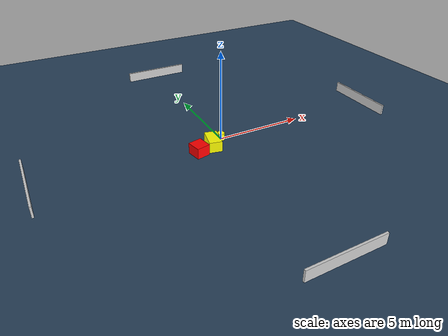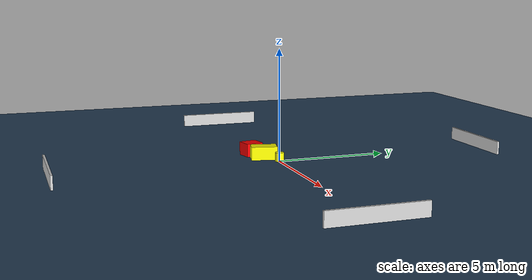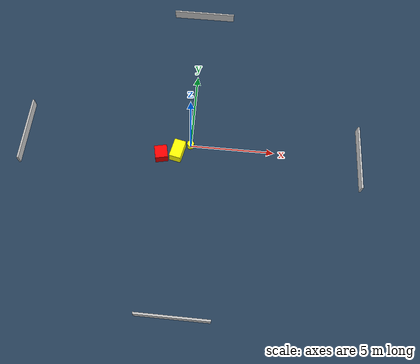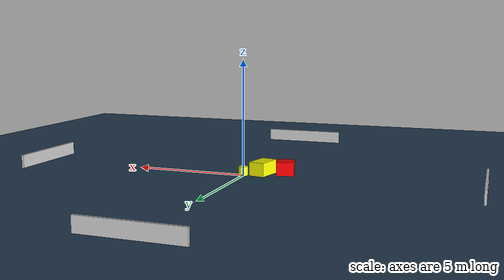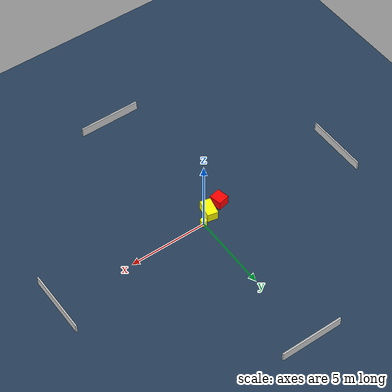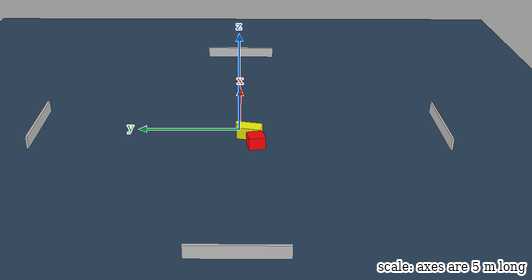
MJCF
<?xml version="1.0" ?>
<mujoco model="generated_environment">
  <option timestep="0.01" integrator="RK4" cone="elliptic"/>
  <default>
    <geom density="1"/>
  </default>
  <asset>
    <texture builtin="gradient" height="3072" name="skybox" rgb1="0.3 0.5 0.7" rgb2="0 0 0" type="skybox" width="512"/>
    <texture builtin="checker" height="300" name="groundplane" rgb1="0.2 0.3 0.4" rgb2="0.1 0.2 0.3" type="2d" width="300"/>
    <material name="groundplane" reflectance="0.2" texrepeat="5 5" texture="groundplane"/>
  </asset>
  <worldbody>
    <light dir="0 0 -1" directional="true" pos="0 0 1.5"/>
    <geom condim="3" friction="0.5 0.005 0.001" material="groundplane" name="floor" pos="0 0 0" size="0 0 0.05" type="plane"/>
    <body name="walls">
      <geom name="wall_1" condim="4" pos="-10.0 0.0 0.3" rgba="0.800000011920929 0.800000011920929 0.800000011920929 1.0" size="0.05 2.0 0.3" type="box"/>
      <geom name="wall_2" condim="4" pos="10.0 0.0 0.3" rgba="0.800000011920929 0.800000011920929 0.800000011920929 1.0" size="0.05 2.0 0.3" type="box"/>
      <geom name="wall_3" condim="4" pos="0.0 -10.0 0.3" rgba="0.800000011920929 0.800000011920929 0.800000011920929 1.0" size="2.0 0.05 0.3" type="box"/>
      <geom name="wall_4" condim="4" pos="0.0 10.0 0.3" rgba="0.800000011920929 0.800000011920929 0.800000011920929 1.0" size="2.0 0.05 0.3" type="box"/>
    </body>
    <body name="robot">
      <joint name="joint_x" type="slide" pos="0 0 0" axis="1 0 0"/>
      <joint name="joint_y" type="slide" pos="0 0 0" axis="0 1 0"/>
      <geom name="robot" type="cylinder" pos="0.0 0.0 0.2" size="0.2 0.2 0.0" mass="5.0" friction="1.0 0.005 0.0001" condim="4" rgba="1.0 1.0 0.0 1.0"/>
    </body>
    <body name="obstacle_1_movable">
      <geom name="obstacle_1_movable" condim="4" pos="-0.7290273279704355 -0.4939719687562652 0.3" euler="0 0 347.986612880926" friction="0.0 0.005 0.001" rgba="1.0 1.0 0.0 1.0" size="0.34598225008256966 0.5799941408826512 0.3" type="box" mass="0.1"/>
      <joint type="free"/>
    </body>
    <body name="obstacle_2_static">
      <geom name="obstacle_2_static" condim="4" pos="-1.679436953768336 -0.7791869810763729 0.3" euler="0 0 101.92927569774884" friction="0.0 0.005 0.001" rgba="1.0 0.0 0.0 1.0" size="0.39712338931329666 0.37473619220250926 0.3" type="box"/>
    </body>
  </worldbody>
  <actuator>
    <motor name="actuator_x" joint="joint_x" gear="1" ctrlrange="-1 1"/>
    <motor name="actuator_y" joint="joint_y" gear="1" ctrlrange="-1 1"/>
  </actuator>
</mujoco>
